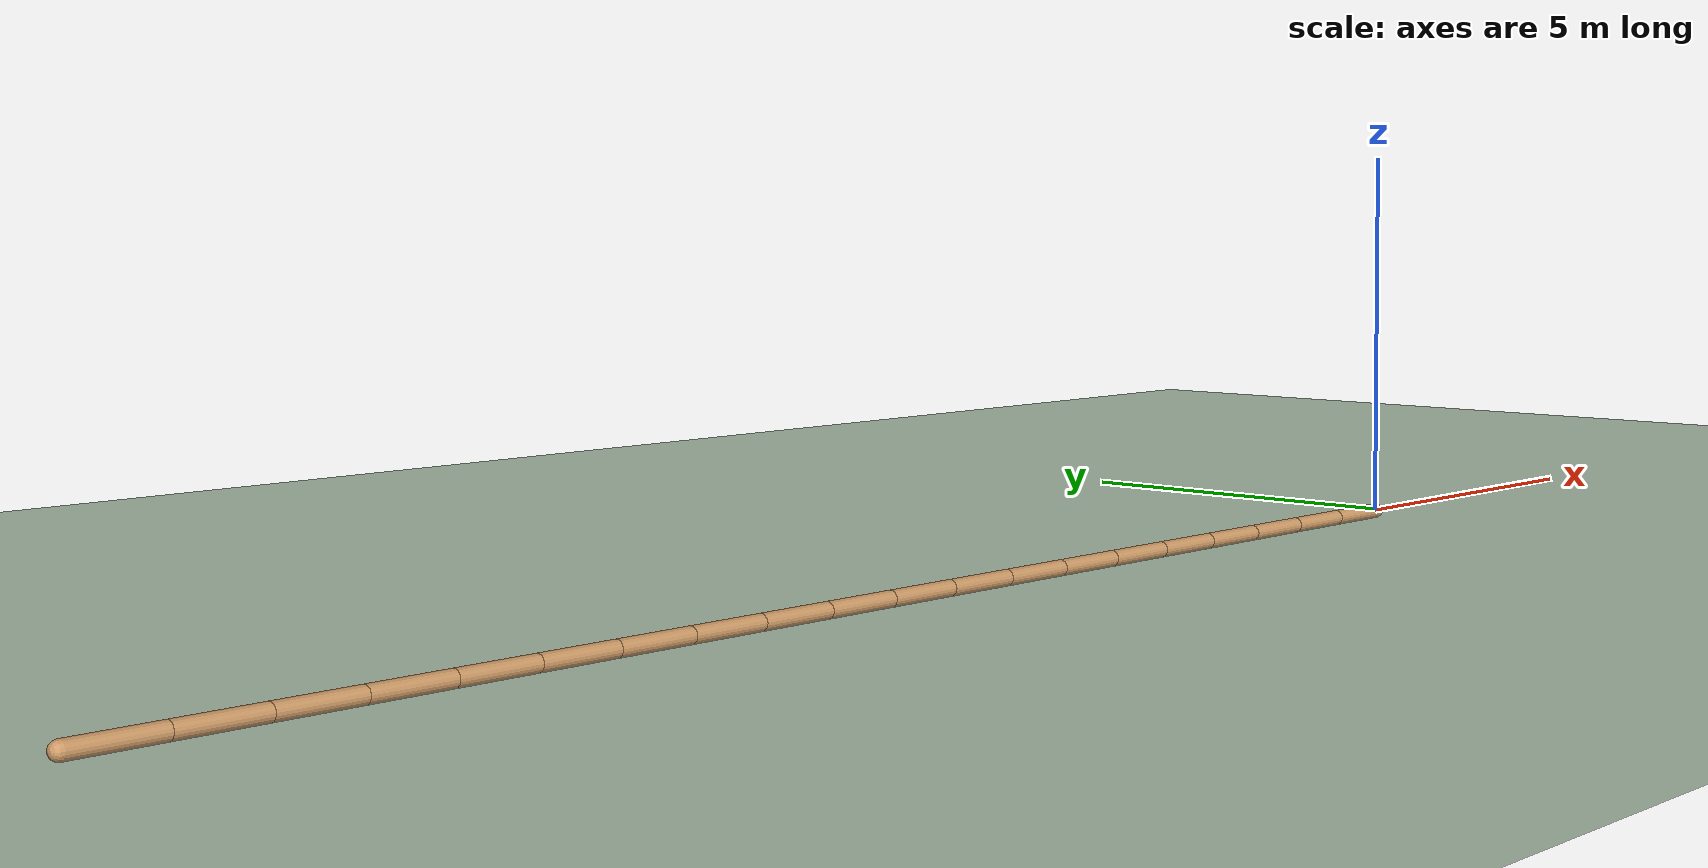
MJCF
<mujoco model="swimmer">
  <compiler angle="degree" coordinate="local" inertiafromgeom="true"/>
  <option collision="predefined" density="4000" integrator="RK4" timestep="0.01" viscosity="0.1"/>
  <default>
    <geom conaffinity="1" condim="1" contype="1" material="geom" rgba="0.8 0.6 .4 1"/>
    <joint armature='0.1'  />
  </default>
  <asset>
    <texture builtin="gradient" height="100" rgb1="1 1 1" rgb2="0 0 0" type="skybox" width="100"/>
    <texture builtin="flat" height="1278" mark="cross" markrgb="1 1 1" name="texgeom" random="0.01" rgb1="0.8 0.6 0.4" rgb2="0.8 0.6 0.4" type="cube" width="127"/>
    <texture builtin="checker" height="100" name="texplane" rgb1="0 0 0" rgb2="0.8 0.8 0.8" type="2d" width="100"/>
    <material name="MatPlane" reflectance="0.5" shininess="1" specular="1" texrepeat="30 30" texture="texplane"/>
    <material name="geom" texture="texgeom" texuniform="true"/>
  </asset>

  <worldbody>
    <light cutoff="100" diffuse="1 1 1" dir="-0 0 -1.3" directional="true" exponent="1" pos="0 0 1.3" specular=".1 .1 .1"/>
    <geom conaffinity="1" condim="3" material="MatPlane" name="floor" pos="0 0 -0.1" rgba="0.8 0.9 0.8 1" size="40 40 0.1" type="plane"/>
    <body name="podBody_1" pos="0 0 0">
      <geom name='pod_1' density="1000" fromto="0 0 0 -1 0 0" size="0.1" type="capsule"/>
      <joint axis="1 0 0" name="slider1" pos="0 0 0" type="slide"/>
      <joint axis="0 1 0" name="slider2" pos="0 0 0" type="slide"/>
      <joint axis="0 0 1" name="rot_1" pos="-1.5 0 0" type="hinge"/>
      <site name="tip" pos="0 0 0" size="0.02 0.02"/>
      <body name="podBody_2" pos="-1 0 0">
        <geom name='pod_2' density="1000" fromto="0 0 0 -1 0 0" size="0.1" type="capsule"/>
        <joint axis="0 0 1" limited="true" name="rot_2" pos="0 0 0" range="-100 100" type="hinge"/>

        <body name="podBody_3" pos="-1 0 0">
          <geom name='pod_3' density="1000" fromto="0 0 0 -1 0 0" size="0.1" type="capsule"/>
          <joint axis="0 0 1" limited="true" name="rot_3" pos="0 0 0" range="-100 100" type="hinge"/>

          <body name="podBody_4" pos="-1 0 0">
            <geom name='pod_4' density="1000" fromto="0 0 0 -1 0 0" size="0.1" type="capsule"/>
            <joint axis="0 0 1" limited="true" name="rot_4" pos="0 0 0" range="-100 100" type="hinge"/>

            <body name="podBody_5" pos="-1 0 0">
              <geom name='pod_5' density="1000" fromto="0 0 0 -1 0 0" size="0.1" type="capsule"/>
              <joint axis="0 0 1" limited="true" name="rot_5" pos="0 0 0" range="-100 100" type="hinge"/>

              <body name="podBody_6" pos="-1 0 0">
                <geom name='pod_6' density="1000" fromto="0 0 0 -1 0 0" size="0.1" type="capsule"/>
                <joint axis="0 0 1" limited="true" name="rot_6" pos="0 0 0" range="-100 100" type="hinge"/>

                <body name="podBody_7" pos="-1 0 0">
                  <geom name='pod_7' density="1000" fromto="0 0 0 -1 0 0" size="0.1" type="capsule"/>
                  <joint axis="0 0 1" limited="true" name="rot_7" pos="0 0 0" range="-100 100" type="hinge"/>

                  <body name="podBody_8" pos="-1 0 0">
                    <geom name='pod_8' density="1000" fromto="0 0 0 -1 0 0" size="0.1" type="capsule"/>
                    <joint axis="0 0 1" limited="true" name="rot_8" pos="0 0 0" range="-100 100" type="hinge"/>

                    <body name="podBody_9" pos="-1 0 0">
                      <geom name='pod_9' density="1000" fromto="0 0 0 -1 0 0" size="0.1" type="capsule"/>
                      <joint axis="0 0 1" limited="true" name="rot_9" pos="0 0 0" range="-100 100" type="hinge"/>

                      <body name="podBody_10" pos="-1 0 0">
                        <geom name='pod_10' density="1000" fromto="0 0 0 -1 0 0" size="0.1" type="capsule"/>
                        <joint axis="0 0 1" limited="true" name="rot_10" pos="0 0 0" range="-100 100" type="hinge"/>

                        <body name="podBody_11" pos="-1 0 0">
                          <geom name='pod_11' density="1000" fromto="0 0 0 -1 0 0" size="0.1" type="capsule"/>
                          <joint axis="0 0 1" limited="true" name="rot_11" pos="0 0 0" range="-100 100" type="hinge"/>

                          <body name="podBody_12" pos="-1 0 0">
                            <geom name='pod_12' density="1000" fromto="0 0 0 -1 0 0" size="0.1" type="capsule"/>
                            <joint axis="0 0 1" limited="true" name="rot_12" pos="0 0 0" range="-100 100" type="hinge"/>

                            <body name="podBody_13" pos="-1 0 0">
                              <geom name='pod_13' density="1000" fromto="0 0 0 -1 0 0" size="0.1" type="capsule"/>
                              <joint axis="0 0 1" limited="true" name="rot_13" pos="0 0 0" range="-100 100" type="hinge"/>

                              <body name="podBody_14" pos="-1 0 0">
                                <geom name='pod_14' density="1000" fromto="0 0 0 -1 0 0" size="0.1" type="capsule"/>
                                <joint axis="0 0 1" limited="true" name="rot_14" pos="0 0 0" range="-100 100" type="hinge"/>

                                <body name="podBody_15" pos="-1 0 0">
                                  <geom name='pod_15' density="1000" fromto="0 0 0 -1 0 0" size="0.1" type="capsule"/>
                                  <joint axis="0 0 1" limited="true" name="rot_15" pos="0 0 0" range="-100 100" type="hinge"/>

                                  <body name="podBody_16" pos="-1 0 0">
                                    <geom name='pod_16' density="1000" fromto="0 0 0 -1 0 0" size="0.1" type="capsule"/>
                                    <joint axis="0 0 1" limited="true" name="rot_16" pos="0 0 0" range="-100 100" type="hinge"/>

                                    <body name="podBody_17" pos="-1 0 0">
                                      <geom name='pod_17' density="1000" fromto="0 0 0 -1 0 0" size="0.1" type="capsule"/>
                                      <joint axis="0 0 1" limited="true" name="rot_17" pos="0 0 0" range="-100 100" type="hinge"/>

                                      <body name="podBody_18" pos="-1 0 0">
                                        <geom name='pod_18' density="1000" fromto="0 0 0 -1 0 0" size="0.1" type="capsule"/>
                                        <joint axis="0 0 1" limited="true" name="rot_18" pos="0 0 0" range="-100 100" type="hinge"/>

                                        <body name="podBody_19" pos="-1 0 0">
                                          <geom name='pod_19' density="1000" fromto="0 0 0 -1 0 0" size="0.1" type="capsule"/>
                                          <joint axis="0 0 1" limited="true" name="rot_19" pos="0 0 0" range="-100 100" type="hinge"/>

                                          <body name="podBody_20" pos="-1 0 0">
                                            <geom name='pod_20' density="1000" fromto="0 0 0 -1 0 0" size="0.1" type="capsule"/>
                                            <joint axis="0 0 1" limited="true" name="rot_20" pos="0 0 0" range="-100 100" type="hinge"/>

                                          </body>
                                        </body>
                                      </body>
                                    </body>
                                  </body>
                                </body>
                              </body>
                            </body>
                          </body>
                        </body>
                      </body>
                    </body>
                  </body>
                </body>
              </body>
            </body>
          </body>
        </body>

      </body>
    </body>
  </worldbody>
  <actuator>
    <motor ctrllimited="true" ctrlrange="-1 1" gear="150.0" joint="rot_2"/>
    <motor ctrllimited="true" ctrlrange="-1 1" gear="150.0" joint="rot_3"/>
    <motor ctrllimited="true" ctrlrange="-1 1" gear="150.0" joint="rot_4"/>
    <motor ctrllimited="true" ctrlrange="-1 1" gear="150.0" joint="rot_5"/>
    <motor ctrllimited="true" ctrlrange="-1 1" gear="150.0" joint="rot_6"/>
    <motor ctrllimited="true" ctrlrange="-1 1" gear="150.0" joint="rot_7"/>
    <motor ctrllimited="true" ctrlrange="-1 1" gear="150.0" joint="rot_8"/>
    <motor ctrllimited="true" ctrlrange="-1 1" gear="150.0" joint="rot_9"/>
    <motor ctrllimited="true" ctrlrange="-1 1" gear="150.0" joint="rot_10"/>
    <motor ctrllimited="true" ctrlrange="-1 1" gear="150.0" joint="rot_11"/>
    <motor ctrllimited="true" ctrlrange="-1 1" gear="150.0" joint="rot_12"/>
    <motor ctrllimited="true" ctrlrange="-1 1" gear="150.0" joint="rot_13"/>
    <motor ctrllimited="true" ctrlrange="-1 1" gear="150.0" joint="rot_14"/>
    <motor ctrllimited="true" ctrlrange="-1 1" gear="150.0" joint="rot_15"/>
    <motor ctrllimited="true" ctrlrange="-1 1" gear="150.0" joint="rot_16"/>
    <motor ctrllimited="true" ctrlrange="-1 1" gear="150.0" joint="rot_17"/>
    <motor ctrllimited="true" ctrlrange="-1 1" gear="150.0" joint="rot_18"/>
    <motor ctrllimited="true" ctrlrange="-1 1" gear="150.0" joint="rot_19"/>
    <motor ctrllimited="true" ctrlrange="-1 1" gear="150.0" joint="rot_20"/>
  </actuator>

</mujoco>
